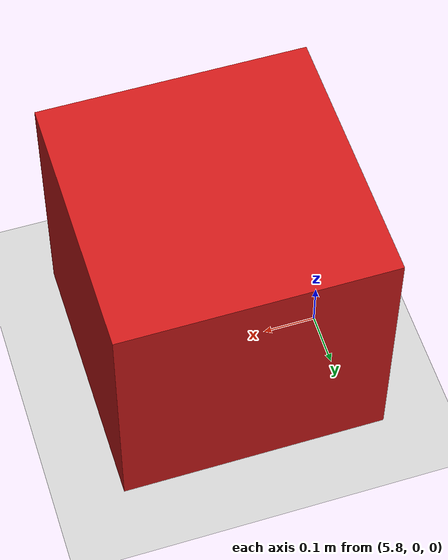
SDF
<?xml version="1.0" ?>
<sdf version="1.5">
  <world name="default">
    <include><uri>model://ground_plane</uri></include>
    <include><uri>model://sun</uri></include>
    <plugin name="gazebo_ros_state" filename="libgazebo_ros_state.so"/>
    <!-- 已知障碍物:车 spawn 于原点朝 +x,box 中心 (6,0) 0.5³,
         前表面距原点 5.75m(远置:验收直行工况 8s×0.5m/s=4m+车头,
         挪近会挡路,2026-09-14 第3轮实测撞墙),雷达高 0.21m 在 box
         高度内 → 静止时 /scan 正前方(角 0)读数应 ≈5.75m -->
    <model name="marker_box">
      <pose>6 0 0.25 0 0 0</pose>
      <link name="link">
        <visual name="vis">
          <geometry><box><size>0.5 0.5 0.5</size></box></geometry>
          <material><ambient>0.8 0.1 0.1 1</ambient><diffuse>0.8 0.1 0.1 1</diffuse></material>
        </visual>
        <collision name="coll">
          <geometry><box><size>0.5 0.5 0.5</size></box></geometry>
        </collision>
      </link>
    </model>
  </world>
</sdf>
